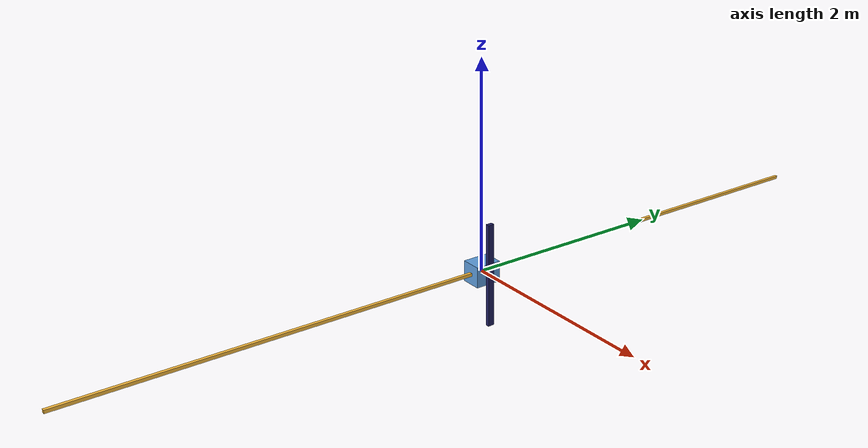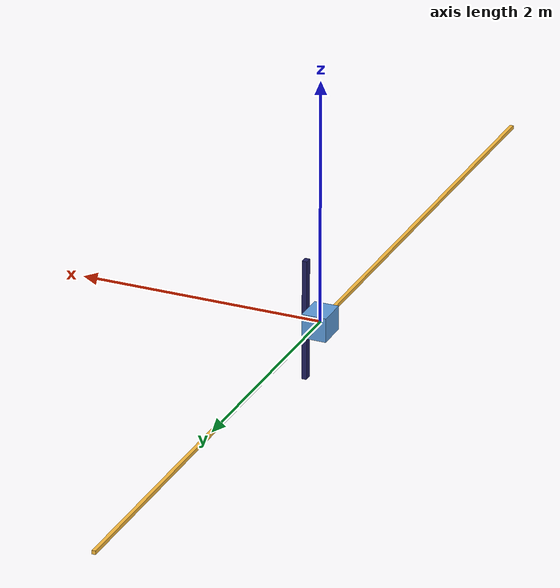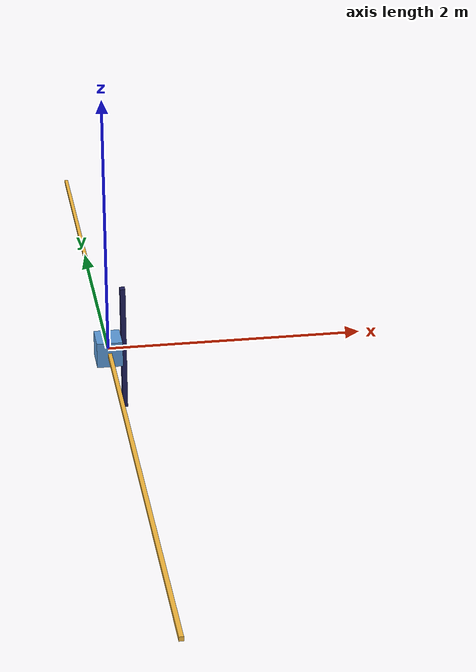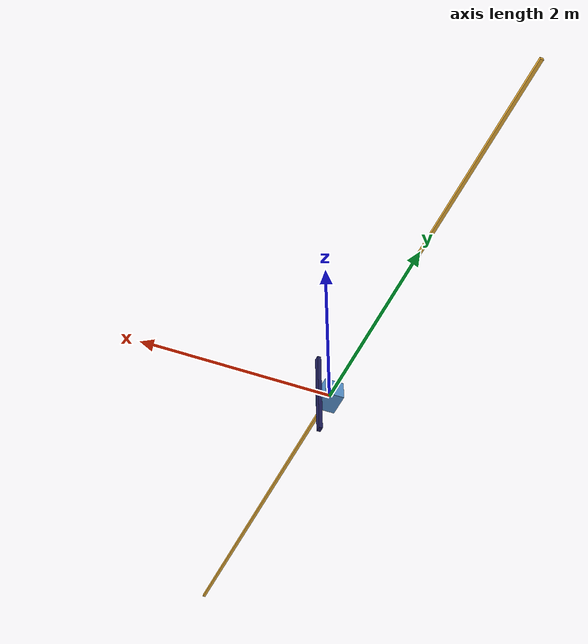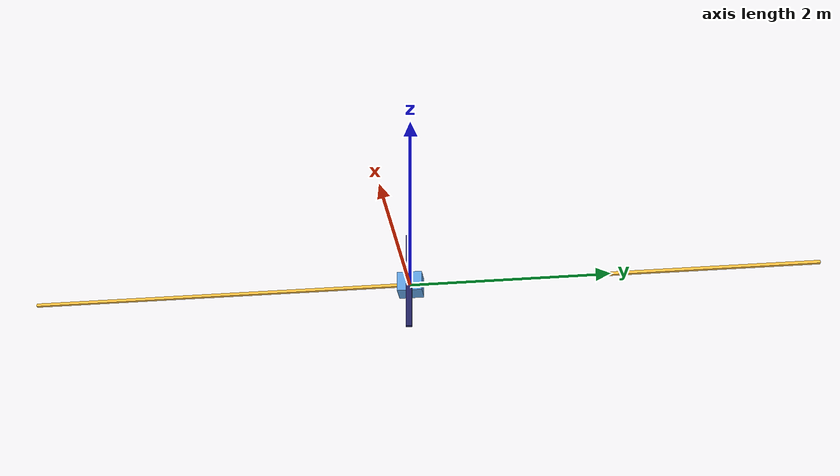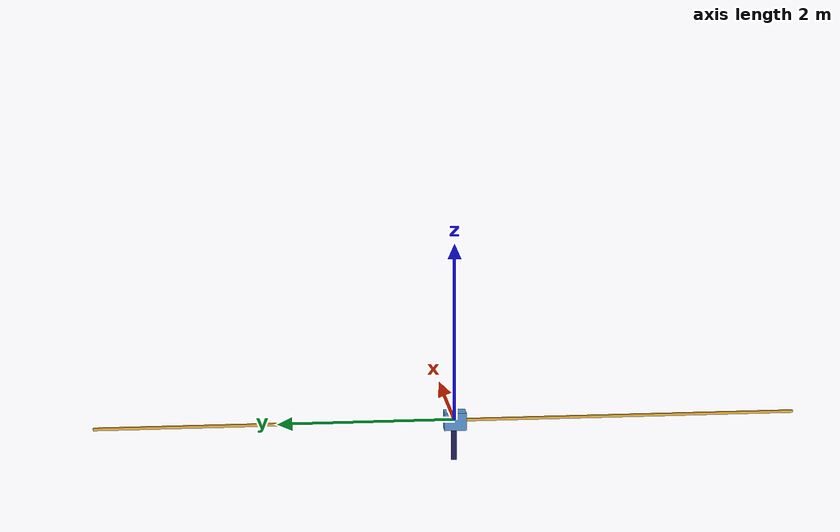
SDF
<?xml version="1.0"?>
<sdf version="1.8">
  <model name="cartpole_bare">
    <link name="slider">
      <inertial><mass>1</mass>
        <inertia><ixx>0.00854</ixx><iyy>0.00667</iyy><izz>0.00854</izz></inertia></inertial>
      <collision name="slider_collision">
        <geometry><box><size>0.03 8 0.03</size></box></geometry></collision>
      <visual name="slider_visual">
        <geometry><box><size>0.03 8 0.03</size></box></geometry>
        <material><ambient>1 0.75 0.25 1</ambient><diffuse>1 0.75 0.25 1</diffuse></material></visual>
    </link>

    <joint name="slider_to_cart" type="prismatic">
      <pose relative_to="slider">0 0 0 0 0 0</pose>
      <parent>slider</parent><child>cart</child>
      <axis><xyz>0 1 0</xyz><limit><lower>-4</lower><upper>4</upper></limit></axis>
    </joint>

    <link name="cart">
      <pose relative_to="slider_to_cart">0 0 0 0 0 0</pose>
      <inertial><mass>1</mass>
        <inertia><ixx>0.00854</ixx><iyy>0.00667</iyy><izz>0.00854</izz></inertia></inertial>
      <collision name="cart_collision">
        <geometry><box><size>0.2 0.25 0.2</size></box></geometry></collision>
      <visual name="cart_visual">
        <geometry><box><size>0.2 0.25 0.2</size></box></geometry>
        <material><ambient>0.375 0.625 0.875 1</ambient><diffuse>0.375 0.625 0.875 1</diffuse></material></visual>
    </link>

    <joint name="cart_to_pole" type="revolute">
      <pose relative_to="cart">0.12 0 0 0 0 0</pose>
      <parent>cart</parent><child>pole</child>
      <axis><xyz>1 0 0</xyz>
        <limit><effort>1000</effort><velocity>8</velocity><lower>-1e9</lower><upper>1e9</upper></limit></axis>
    </joint>

    <link name="pole">
      <pose relative_to="cart_to_pole">0 0 0 0 0 0</pose>
      <inertial><pose>0 0 0.47 0 0 0</pose><mass>1</mass>
        <inertia><ixx>0.08363</ixx><iyy>0.08347</iyy><izz>0.000433</izz></inertia></inertial>
      <collision name="pole_collision">
        <geometry><box><size>0.04 0.06 1</size></box></geometry></collision>
      <visual name="pole_visual">
        <geometry><box><size>0.04 0.06 1</size></box></geometry>
        <material><ambient>0.125 0.125 0.375 1</ambient><diffuse>0.125 0.125 0.375 1</diffuse></material></visual>
    </link>
  </model>
</sdf>
